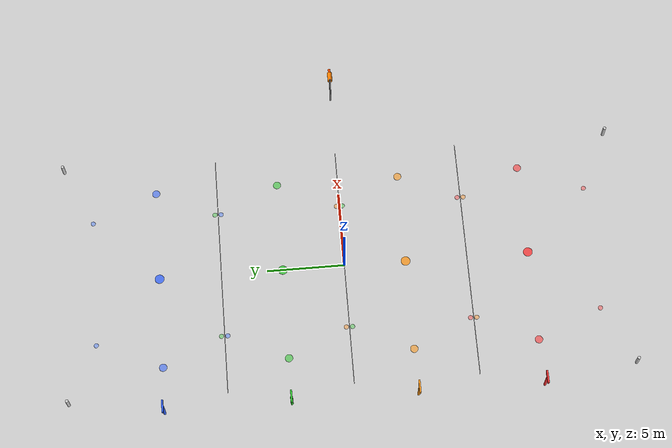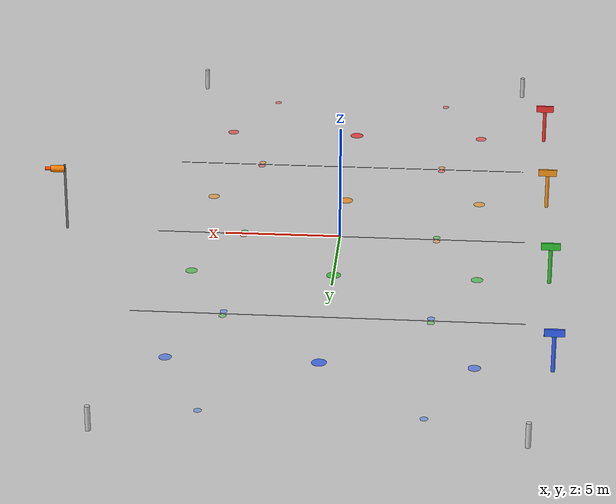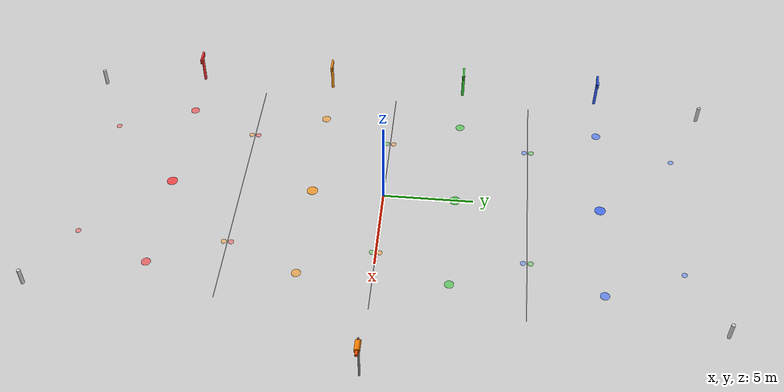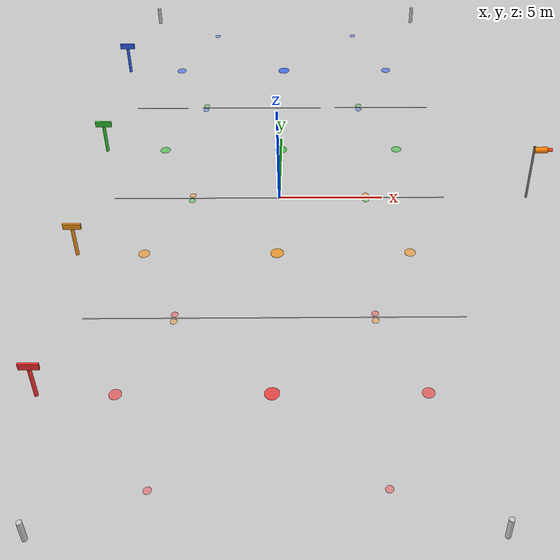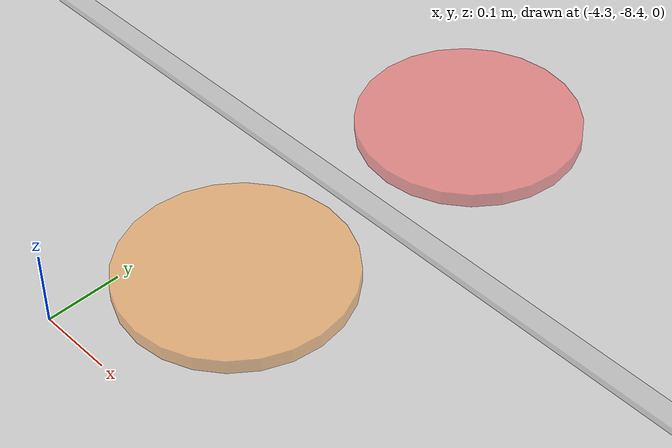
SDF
<sdf version="1.6">
 <world name="twelve_drone_4group_comparison">
  <physics type="ode">
   <max_step_size>0.001</max_step_size>
   <real_time_factor>1.0</real_time_factor>
   <real_time_update_rate>1000</real_time_update_rate>
   <ode>
    <solver><type>quick</type><iters>50</iters><sor>1.3</sor></solver>
    <constraints>
     <cfm>0.0</cfm>
     <erp>0.2</erp>
     <contact_max_correcting_vel>100</contact_max_correcting_vel>
     <contact_surface_layer>0.001</contact_surface_layer>
    </constraints>
   </ode>
  </physics>
  <plugin name="gazebo_ros_init" filename="libgazebo_ros_init.so"><ros><namespace>/</namespace></ros></plugin>
  <plugin name="gazebo_ros_properties" filename="libgazebo_ros_properties.so">
   <ros><namespace>/</namespace></ros>
  </plugin>
  <include><uri>model://sun</uri></include>
  <include><uri>model://ground_plane</uri></include>
  <model name="path_pd_center">
   <static>true</static>
   <pose>0 -12 0.01 0 0 0</pose>
   <link name="link">
    <visual name="visual">
     <geometry><cylinder><radius>0.3</radius><length>0.02</length></cylinder></geometry>
     <material><ambient>1 0.2 0.2 0.8</ambient><diffuse>1 0.2 0.2 0.8</diffuse></material>
    </visual>
   </link>
  </model>
  <model name="path_pd_right">
   <static>true</static>
   <pose>6 -12 0.01 0 0 0</pose>
   <link name="link">
    <visual name="visual">
     <geometry><cylinder><radius>0.25</radius><length>0.02</length></cylinder></geometry>
     <material><ambient>1 0.2 0.2 0.6</ambient><diffuse>1 0.2 0.2 0.6</diffuse></material>
    </visual>
   </link>
  </model>
  <model name="path_pd_left">
   <static>true</static>
   <pose>-6 -12 0.01 0 0 0</pose>
   <link name="link">
    <visual name="visual">
     <geometry><cylinder><radius>0.25</radius><length>0.02</length></cylinder></geometry>
     <material><ambient>1 0.2 0.2 0.6</ambient><diffuse>1 0.2 0.2 0.6</diffuse></material>
    </visual>
   </link>
  </model>
  <model name="path_pd_r1">
   <static>true</static>
   <pose>4.2 -7.8 0.01 0 0 0</pose>
   <link name="link">
    <visual name="v">
     <geometry><cylinder><radius>0.15</radius><length>0.02</length></cylinder></geometry>
     <material><ambient>1 0.3 0.3 0.5</ambient><diffuse>1 0.3 0.3 0.5</diffuse></material>
    </visual>
   </link>
  </model>
  <model name="path_pd_r2">
   <static>true</static>
   <pose>4.2 -16.2 0.01 0 0 0</pose>
   <link name="link">
    <visual name="v">
     <geometry><cylinder><radius>0.15</radius><length>0.02</length></cylinder></geometry>
     <material><ambient>1 0.3 0.3 0.5</ambient><diffuse>1 0.3 0.3 0.5</diffuse></material>
    </visual>
   </link>
  </model>
  <model name="path_pd_l1">
   <static>true</static>
   <pose>-4.2 -7.8 0.01 0 0 0</pose>
   <link name="link">
    <visual name="v">
     <geometry><cylinder><radius>0.15</radius><length>0.02</length></cylinder></geometry>
     <material><ambient>1 0.3 0.3 0.5</ambient><diffuse>1 0.3 0.3 0.5</diffuse></material>
    </visual>
   </link>
  </model>
  <model name="path_pd_l2">
   <static>true</static>
   <pose>-4.2 -16.2 0.01 0 0 0</pose>
   <link name="link">
    <visual name="v">
     <geometry><cylinder><radius>0.15</radius><length>0.02</length></cylinder></geometry>
     <material><ambient>1 0.3 0.3 0.5</ambient><diffuse>1 0.3 0.3 0.5</diffuse></material>
    </visual>
   </link>
  </model>
  <model name="path_pid_center">
   <static>true</static>
   <pose>0 -4 0.01 0 0 0</pose>
   <link name="link">
    <visual name="visual">
     <geometry><cylinder><radius>0.3</radius><length>0.02</length></cylinder></geometry>
     <material><ambient>1 0.6 0.1 0.8</ambient><diffuse>1 0.6 0.1 0.8</diffuse></material>
    </visual>
   </link>
  </model>
  <model name="path_pid_right">
   <static>true</static>
   <pose>6 -4 0.01 0 0 0</pose>
   <link name="link">
    <visual name="visual">
     <geometry><cylinder><radius>0.25</radius><length>0.02</length></cylinder></geometry>
     <material><ambient>1 0.6 0.1 0.6</ambient><diffuse>1 0.6 0.1 0.6</diffuse></material>
    </visual>
   </link>
  </model>
  <model name="path_pid_left">
   <static>true</static>
   <pose>-6 -4 0.01 0 0 0</pose>
   <link name="link">
    <visual name="visual">
     <geometry><cylinder><radius>0.25</radius><length>0.02</length></cylinder></geometry>
     <material><ambient>1 0.6 0.1 0.6</ambient><diffuse>1 0.6 0.1 0.6</diffuse></material>
    </visual>
   </link>
  </model>
  <model name="path_pid_r1">
   <static>true</static>
   <pose>4.2 0.2 0.01 0 0 0</pose>
   <link name="link">
    <visual name="v">
     <geometry><cylinder><radius>0.15</radius><length>0.02</length></cylinder></geometry>
     <material><ambient>1 0.6 0.2 0.5</ambient><diffuse>1 0.6 0.2 0.5</diffuse></material>
    </visual>
   </link>
  </model>
  <model name="path_pid_r2">
   <static>true</static>
   <pose>4.2 -8.2 0.01 0 0 0</pose>
   <link name="link">
    <visual name="v">
     <geometry><cylinder><radius>0.15</radius><length>0.02</length></cylinder></geometry>
     <material><ambient>1 0.6 0.2 0.5</ambient><diffuse>1 0.6 0.2 0.5</diffuse></material>
    </visual>
   </link>
  </model>
  <model name="path_pid_l1">
   <static>true</static>
   <pose>-4.2 0.2 0.01 0 0 0</pose>
   <link name="link">
    <visual name="v">
     <geometry><cylinder><radius>0.15</radius><length>0.02</length></cylinder></geometry>
     <material><ambient>1 0.6 0.2 0.5</ambient><diffuse>1 0.6 0.2 0.5</diffuse></material>
    </visual>
   </link>
  </model>
  <model name="path_pid_l2">
   <static>true</static>
   <pose>-4.2 -8.2 0.01 0 0 0</pose>
   <link name="link">
    <visual name="v">
     <geometry><cylinder><radius>0.15</radius><length>0.02</length></cylinder></geometry>
     <material><ambient>1 0.6 0.2 0.5</ambient><diffuse>1 0.6 0.2 0.5</diffuse></material>
    </visual>
   </link>
  </model>
  <model name="path_it2_center">
   <static>true</static>
   <pose>0 4 0.01 0 0 0</pose>
   <link name="link">
    <visual name="visual">
     <geometry><cylinder><radius>0.3</radius><length>0.02</length></cylinder></geometry>
     <material><ambient>0.2 0.8 0.2 0.8</ambient><diffuse>0.2 0.8 0.2 0.8</diffuse></material>
    </visual>
   </link>
  </model>
  <model name="path_it2_right">
   <static>true</static>
   <pose>6 4 0.01 0 0 0</pose>
   <link name="link">
    <visual name="visual">
     <geometry><cylinder><radius>0.25</radius><length>0.02</length></cylinder></geometry>
     <material><ambient>0.2 0.8 0.2 0.6</ambient><diffuse>0.2 0.8 0.2 0.6</diffuse></material>
    </visual>
   </link>
  </model>
  <model name="path_it2_left">
   <static>true</static>
   <pose>-6 4 0.01 0 0 0</pose>
   <link name="link">
    <visual name="visual">
     <geometry><cylinder><radius>0.25</radius><length>0.02</length></cylinder></geometry>
     <material><ambient>0.2 0.8 0.2 0.6</ambient><diffuse>0.2 0.8 0.2 0.6</diffuse></material>
    </visual>
   </link>
  </model>
  <model name="path_it2_r1">
   <static>true</static>
   <pose>4.2 8.2 0.01 0 0 0</pose>
   <link name="link">
    <visual name="v">
     <geometry><cylinder><radius>0.15</radius><length>0.02</length></cylinder></geometry>
     <material><ambient>0.3 0.8 0.3 0.5</ambient><diffuse>0.3 0.8 0.3 0.5</diffuse></material>
    </visual>
   </link>
  </model>
  <model name="path_it2_r2">
   <static>true</static>
   <pose>4.2 -0.2 0.01 0 0 0</pose>
   <link name="link">
    <visual name="v">
     <geometry><cylinder><radius>0.15</radius><length>0.02</length></cylinder></geometry>
     <material><ambient>0.3 0.8 0.3 0.5</ambient><diffuse>0.3 0.8 0.3 0.5</diffuse></material>
    </visual>
   </link>
  </model>
  <model name="path_it2_l1">
   <static>true</static>
   <pose>-4.2 8.2 0.01 0 0 0</pose>
   <link name="link">
    <visual name="v">
     <geometry><cylinder><radius>0.15</radius><length>0.02</length></cylinder></geometry>
     <material><ambient>0.3 0.8 0.3 0.5</ambient><diffuse>0.3 0.8 0.3 0.5</diffuse></material>
    </visual>
   </link>
  </model>
  <model name="path_it2_l2">
   <static>true</static>
   <pose>-4.2 -0.2 0.01 0 0 0</pose>
   <link name="link">
    <visual name="v">
     <geometry><cylinder><radius>0.15</radius><length>0.02</length></cylinder></geometry>
     <material><ambient>0.3 0.8 0.3 0.5</ambient><diffuse>0.3 0.8 0.3 0.5</diffuse></material>
    </visual>
   </link>
  </model>
  <model name="path_gt2_center">
   <static>true</static>
   <pose>0 12 0.01 0 0 0</pose>
   <link name="link">
    <visual name="visual">
     <geometry><cylinder><radius>0.3</radius><length>0.02</length></cylinder></geometry>
     <material><ambient>0.2 0.4 1 0.8</ambient><diffuse>0.2 0.4 1 0.8</diffuse></material>
    </visual>
   </link>
  </model>
  <model name="path_gt2_right">
   <static>true</static>
   <pose>6 12 0.01 0 0 0</pose>
   <link name="link">
    <visual name="visual">
     <geometry><cylinder><radius>0.25</radius><length>0.02</length></cylinder></geometry>
     <material><ambient>0.2 0.4 1 0.6</ambient><diffuse>0.2 0.4 1 0.6</diffuse></material>
    </visual>
   </link>
  </model>
  <model name="path_gt2_left">
   <static>true</static>
   <pose>-6 12 0.01 0 0 0</pose>
   <link name="link">
    <visual name="visual">
     <geometry><cylinder><radius>0.25</radius><length>0.02</length></cylinder></geometry>
     <material><ambient>0.2 0.4 1 0.6</ambient><diffuse>0.2 0.4 1 0.6</diffuse></material>
    </visual>
   </link>
  </model>
  <model name="path_gt2_r1">
   <static>true</static>
   <pose>4.2 16.2 0.01 0 0 0</pose>
   <link name="link">
    <visual name="v">
     <geometry><cylinder><radius>0.15</radius><length>0.02</length></cylinder></geometry>
     <material><ambient>0.3 0.5 1 0.5</ambient><diffuse>0.3 0.5 1 0.5</diffuse></material>
    </visual>
   </link>
  </model>
  <model name="path_gt2_r2">
   <static>true</static>
   <pose>4.2 7.8 0.01 0 0 0</pose>
   <link name="link">
    <visual name="v">
     <geometry><cylinder><radius>0.15</radius><length>0.02</length></cylinder></geometry>
     <material><ambient>0.3 0.5 1 0.5</ambient><diffuse>0.3 0.5 1 0.5</diffuse></material>
    </visual>
   </link>
  </model>
  <model name="path_gt2_l1">
   <static>true</static>
   <pose>-4.2 16.2 0.01 0 0 0</pose>
   <link name="link">
    <visual name="v">
     <geometry><cylinder><radius>0.15</radius><length>0.02</length></cylinder></geometry>
     <material><ambient>0.3 0.5 1 0.5</ambient><diffuse>0.3 0.5 1 0.5</diffuse></material>
    </visual>
   </link>
  </model>
  <model name="path_gt2_l2">
   <static>true</static>
   <pose>-4.2 7.8 0.01 0 0 0</pose>
   <link name="link">
    <visual name="v">
     <geometry><cylinder><radius>0.15</radius><length>0.02</length></cylinder></geometry>
     <material><ambient>0.3 0.5 1 0.5</ambient><diffuse>0.3 0.5 1 0.5</diffuse></material>
    </visual>
   </link>
  </model>
  <model name="scale_x">
   <static>true</static>
   <pose>0.5 0 0.02 0 0 0</pose>
   <link name="link">
    <visual name="visual">
     <geometry><box><size>1.0 0.05 0.02</size></box></geometry>
     <material><ambient>1 1 1 1</ambient><diffuse>1 1 1 1</diffuse></material>
    </visual>
   </link>
  </model>
  <model name="scale_y">
   <static>true</static>
   <pose>0 0.5 0.02 0 0 0</pose>
   <link name="link">
    <visual name="visual">
     <geometry><box><size>0.05 1.0 0.02</size></box></geometry>
     <material><ambient>1 1 1 1</ambient><diffuse>1 1 1 1</diffuse></material>
    </visual>
   </link>
  </model>
  <model name="windsock_pole">
   <static>true</static>
   <pose>12 0 1.5 0 0 0</pose>
   <link name="pole">
    <visual name="pole_visual">
     <geometry><cylinder><radius>0.05</radius><length>3.0</length></cylinder></geometry>
     <material><ambient>0.4 0.4 0.4 1</ambient><diffuse>0.5 0.5 0.5 1</diffuse></material>
    </visual>
   </link>
  </model>
  <model name="windsock_cone">
   <static>true</static>
   <pose>12.3 0 2.8 0 1.57 0</pose>
   <link name="sock">
    <visual name="sock_visual">
     <geometry><cylinder><radius>0.15</radius><length>0.6</length></cylinder></geometry>
     <material><ambient>1 0.5 0 1</ambient><diffuse>1 0.5 0 1</diffuse></material>
    </visual>
   </link>
  </model>
  <model name="windsock_tip">
   <static>true</static>
   <pose>12.7 0 2.8 0 1.57 0</pose>
   <link name="tip">
    <visual name="tip_visual">
     <geometry><cylinder><radius>0.08</radius><length>0.3</length></cylinder></geometry>
     <material><ambient>1 0.3 0 1</ambient><diffuse>1 0.3 0 1</diffuse></material>
    </visual>
   </link>
  </model>
  <model name="lane_sep_1">
   <static>true</static>
   <pose>0 -8 0.005 0 0 0</pose>
   <link name="link">
    <visual name="visual">
     <geometry><box><size>16 0.03 0.01</size></box></geometry>
     <material><ambient>0.7 0.7 0.7 0.4</ambient><diffuse>0.7 0.7 0.7 0.4</diffuse></material>
    </visual>
   </link>
  </model>
  <model name="lane_sep_2">
   <static>true</static>
   <pose>0 0 0.005 0 0 0</pose>
   <link name="link">
    <visual name="visual">
     <geometry><box><size>16 0.03 0.01</size></box></geometry>
     <material><ambient>0.7 0.7 0.7 0.4</ambient><diffuse>0.7 0.7 0.7 0.4</diffuse></material>
    </visual>
   </link>
  </model>
  <model name="lane_sep_3">
   <static>true</static>
   <pose>0 8 0.005 0 0 0</pose>
   <link name="link">
    <visual name="visual">
     <geometry><box><size>16 0.03 0.01</size></box></geometry>
     <material><ambient>0.7 0.7 0.7 0.4</ambient><diffuse>0.7 0.7 0.7 0.4</diffuse></material>
    </visual>
   </link>
  </model>
  <model name="label_pd">
   <static>true</static>
   <pose>-9 -12 0.75 0 0 0</pose>
   <link name="link">
    <visual name="post">
     <geometry><cylinder><radius>0.08</radius><length>1.5</length></cylinder></geometry>
     <material><ambient>1 0.2 0.2 1</ambient><diffuse>1 0.2 0.2 1</diffuse></material>
    </visual>
    <visual name="label">
     <pose>0 0 0.9 0 0 0</pose>
     <geometry><box><size>0.8 0.1 0.3</size></box></geometry>
     <material><ambient>1 0.2 0.2 1</ambient><diffuse>1 0.2 0.2 1</diffuse></material>
    </visual>
   </link>
  </model>
  <model name="label_pid">
   <static>true</static>
   <pose>-9 -4 0.75 0 0 0</pose>
   <link name="link">
    <visual name="post">
     <geometry><cylinder><radius>0.08</radius><length>1.5</length></cylinder></geometry>
     <material><ambient>1 0.6 0.1 1</ambient><diffuse>1 0.6 0.1 1</diffuse></material>
    </visual>
    <visual name="label">
     <pose>0 0 0.9 0 0 0</pose>
     <geometry><box><size>0.8 0.1 0.3</size></box></geometry>
     <material><ambient>1 0.6 0.1 1</ambient><diffuse>1 0.6 0.1 1</diffuse></material>
    </visual>
   </link>
  </model>
  <model name="label_it2">
   <static>true</static>
   <pose>-9 4 0.75 0 0 0</pose>
   <link name="link">
    <visual name="post">
     <geometry><cylinder><radius>0.08</radius><length>1.5</length></cylinder></geometry>
     <material><ambient>0.2 0.8 0.2 1</ambient><diffuse>0.2 0.8 0.2 1</diffuse></material>
    </visual>
    <visual name="label">
     <pose>0 0 0.9 0 0 0</pose>
     <geometry><box><size>0.8 0.1 0.3</size></box></geometry>
     <material><ambient>0.2 0.8 0.2 1</ambient><diffuse>0.2 0.8 0.2 1</diffuse></material>
    </visual>
   </link>
  </model>
  <model name="label_gt2">
   <static>true</static>
   <pose>-9 12 0.75 0 0 0</pose>
   <link name="link">
    <visual name="post">
     <geometry><cylinder><radius>0.08</radius><length>1.5</length></cylinder></geometry>
     <material><ambient>0.2 0.4 1 1</ambient><diffuse>0.2 0.4 1 1</diffuse></material>
    </visual>
    <visual name="label">
     <pose>0 0 0.9 0 0 0</pose>
     <geometry><box><size>0.8 0.1 0.3</size></box></geometry>
     <material><ambient>0.2 0.4 1 1</ambient><diffuse>0.2 0.4 1 1</diffuse></material>
    </visual>
   </link>
  </model>
  <model name="corner_nw">
   <static>true</static>
   <pose>-8 18 0.5 0 0 0</pose>
   <link name="link">
    <visual name="visual">
     <geometry><cylinder><radius>0.1</radius><length>1.0</length></cylinder></geometry>
     <material><ambient>0.8 0.8 0.8 1</ambient><diffuse>0.8 0.8 0.8 1</diffuse></material>
    </visual>
   </link>
  </model>
  <model name="corner_ne">
   <static>true</static>
   <pose>8 18 0.5 0 0 0</pose>
   <link name="link">
    <visual name="visual">
     <geometry><cylinder><radius>0.1</radius><length>1.0</length></cylinder></geometry>
     <material><ambient>0.8 0.8 0.8 1</ambient><diffuse>0.8 0.8 0.8 1</diffuse></material>
    </visual>
   </link>
  </model>
  <model name="corner_sw">
   <static>true</static>
   <pose>-8 -18 0.5 0 0 0</pose>
   <link name="link">
    <visual name="visual">
     <geometry><cylinder><radius>0.1</radius><length>1.0</length></cylinder></geometry>
     <material><ambient>0.8 0.8 0.8 1</ambient><diffuse>0.8 0.8 0.8 1</diffuse></material>
    </visual>
   </link>
  </model>
  <model name="corner_se">
   <static>true</static>
   <pose>8 -18 0.5 0 0 0</pose>
   <link name="link">
    <visual name="visual">
     <geometry><cylinder><radius>0.1</radius><length>1.0</length></cylinder></geometry>
     <material><ambient>0.8 0.8 0.8 1</ambient><diffuse>0.8 0.8 0.8 1</diffuse></material>
    </visual>
   </link>
  </model>
 </world>
</sdf>
